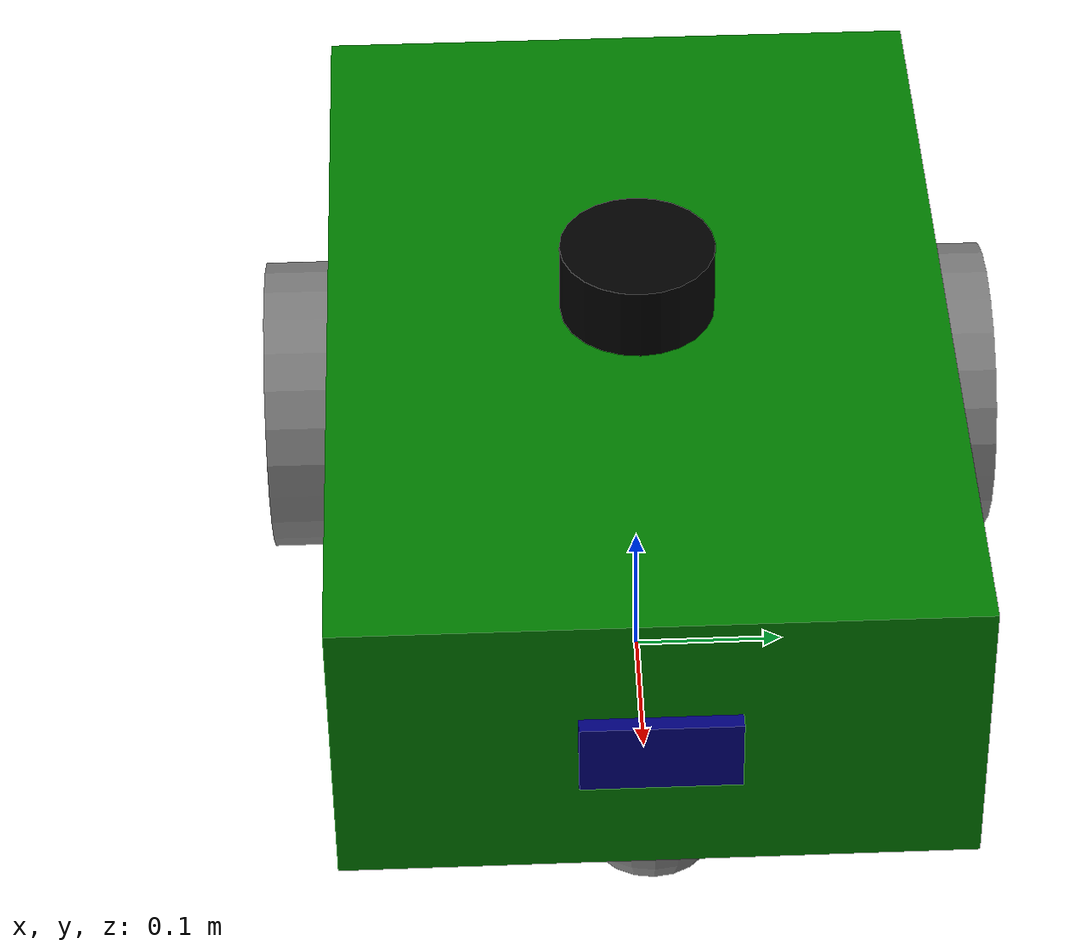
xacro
<?xml version="1.0" encoding="UTF-8"?>

<robot name="differential_robot" xmlns:xacro="http://www.ros.org/wiki/xacro">

    <xacro:arg name="sim_classic" default="false" />
    <xacro:arg name="ign" default="false" />

    <xacro:include filename="$(find differential_robot_description)/urdf/common_properties.xacro"/>
    <xacro:include filename="$(find differential_robot_description)/urdf/mobile_base.xacro"/>
    <xacro:include filename="$(find differential_robot_description)/urdf/mobile_base_gazebo.xacro"/>

    <xacro:include filename="$(find differential_robot_description)/urdf/camera.xacro"/>
    <xacro:include filename="$(find differential_robot_description)/urdf/lidar.xacro"/>
</robot>

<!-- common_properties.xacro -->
<robot xmlns:xacro="http://www.ros.org/wiki/xacro">
    <!-- Material properties to use in the robot -->
    <material name="green">
        <color rgba="0.0 0.5 0.0 1.0"/>
    </material>
    <material name="blue">
        <color rgba="0.0 0.0 0.5 1.0"/>
    </material>
    <material name="gray">
        <color rgba="0.5 0.5 0.5 1.0"/>
    </material>
    <material name="red_collision">
        <color rgba="0.5 0.0 0.0 0.5"/>
    </material>
    <material name="black">
        <color rgba="0.0 0.0 0.0 1.0"/>
    </material>

    <!-- Inertial macros -->
    <xacro:macro name="box_inertia" params="m l w h xyz rpy">
        <inertial>
            <origin xyz="${xyz}" rpy="${rpy}"/>
            <mass value="${m}"/>
            <inertia ixx="${(m/12.0) * (h*h + l*l)}" ixy="0.0" ixz="0.0" iyy="${(m/12.0) * (w*w + l*l)}" iyz="0.0" izz="${(m/12.0) * (h*h + w*w)}"/>
        </inertial>
    </xacro:macro>

    <xacro:macro name="cylinder_inertia" params="m r l xyz rpy">
        <inertial>
            <origin xyz="${xyz}" rpy="${rpy}"/>
            <mass value="${m}"/>
            <inertia ixx="${(m/12.0) * (l*l + 3.0*r*r)}" ixy="0.0" ixz="0.0" iyy="${(m/12.0) * (l*l + 3.0*r*r)}" iyz="0.0" izz="${(m/2.0) * (r*r)}"/>
        </inertial>
    </xacro:macro>

    <xacro:macro name="sphere_inertia" params="m r xyz rpy">
        <inertial>
            <origin xyz="${xyz}" rpy="${rpy}"/>
            <mass value="${m}"/>
            <inertia ixx="${(2.0*m/5.0) * (r*r)}" ixy="0.0" ixz="0.0" iyy="${(2.0*m/5.0) * (r*r)}" iyz="0.0" izz="${(2.0*m/5.0) * (r*r)}"/>
        </inertial>
    </xacro:macro>
</robot>

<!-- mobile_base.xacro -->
<robot xmlns:xacro="http://www.ros.org/wiki/xacro">
    <xacro:property name="base_lenght" value="0.6"/>
    <xacro:property name="base_width" value="0.4"/>
    <xacro:property name="base_height" value="0.2"/>
    <xacro:property name="wheel_radius" value="0.1"/>
    <xacro:property name="wheel_lenght" value="0.05"/>

    <xacro:macro name="wheel_link" params="prefix">
        <link name="${prefix}_wheel_link">
            <xacro:cylinder_inertia m="1.0" r="${2*wheel_radius}" l="${2*wheel_lenght}" xyz="0.0 0.0 0.0" rpy="${pi/2.0} 0.0 0.0"/>

            <visual>
                <geometry>
                    <cylinder radius="${wheel_radius}" length="${wheel_lenght}"/>
                </geometry>
                <origin xyz="0.0 0.0 0.0" rpy="${pi/2.0} 0.0 0.0"/>
                <material name="gray"/>
            </visual>

            <collision>
                <geometry>
                    <cylinder radius="${wheel_radius}" length="${wheel_lenght}"/>
                </geometry>
                <origin xyz="0.0 0.0 0.0" rpy="${pi/2.0} 0.0 0.0"/>
            </collision>
        </link>
    </xacro:macro>

    <!-- Robot links section -->
    <link name="base_footprint"/>

    <link name="base_link">
        <xacro:box_inertia m="5.0" l="${2*base_lenght}" w="${2*base_width}" h="${2*base_height}"
                           xyz="0.0 0.0 ${base_height/2.0}" rpy="0.0 0.0 0.0"/>

        <visual>
            <geometry>
                <box size="${base_lenght} ${base_width} ${base_height}"/>
            </geometry>
            <origin xyz="0.0 0.0 ${base_height/2.0}" rpy="0.0 0.0 0.0"/>
            <material name="green"/>
        </visual>

        <collision>
            <geometry>
                <box size="${base_lenght} ${base_width} ${base_height}"/>
            </geometry>
            <origin xyz="0.0 0.0 ${base_height/2.0}" rpy="0.0 0.0 0.0"/>
        </collision>
    </link>

    <xacro:wheel_link prefix="right"/>
    <xacro:wheel_link prefix="left"/>

    <link name="caster_wheel_link">
        <xacro:sphere_inertia m="0.5" r="${2*wheel_radius/2.0}"
                           xyz="0.0 0.0 0.0" rpy="0.0 0.0 0.0"/>

        <visual>
            <geometry>
                <sphere radius="${wheel_radius/2.0}"/>
            </geometry>
            <origin xyz="0.0 0.0 0.0" rpy="0.0 0.0 0.0"/>
            <material name="gray"/>
        </visual>

        <collision>
            <geometry>
                <sphere radius="${wheel_radius/2.0}"/>
            </geometry>
            <origin xyz="0.0 0.0 0.0" rpy="0.0 0.0 0.0"/>
        </collision>
    </link>

    <!-- Robot joints section -->
    <joint name="base_joint" type="fixed">
        <parent link="base_footprint"/>
        <child link="base_link"/>
        <origin xyz="0.0 0.0 0.1" rpy="0.0 0.0 0.0"/>
    </joint>
    <joint name="base_right_wheel_joint" type="continuous">
        <parent link="base_link"/>
        <child link="right_wheel_link"/>
        <axis xyz="0 1 0"/>
        <origin xyz="${-base_lenght/4.0} ${-((base_width/2.0)+(wheel_lenght/2.0))}  0.0" rpy="0 0 0"/>
    </joint>
    <joint name="base_left_wheel_joint" type="continuous">
        <parent link="base_link"/>
        <child link="left_wheel_link"/>
        <axis xyz="0 1 0"/>
        <origin xyz="${-base_lenght/4.0} ${(base_width/2.0)+(wheel_lenght/2.0)} 0.0" rpy="0 0 0"/>
    </joint>
    <joint name="base_caster_wheel_joint" type="fixed">
        <parent link="base_link"/>
        <child link="caster_wheel_link"/>
        <origin xyz="${base_lenght/3.0} 0.0 ${-wheel_radius/2.0}" rpy="0.0 0.0 0.0"/>
    </joint>

</robot>

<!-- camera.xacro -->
<robot xmlns:xacro="http://www.ros.org/wiki/xacro">

    <xacro:property name="camera_lenght" value="0.01"/>
    <xacro:property name="camera_width" value="0.1"/>
    <xacro:property name="camera_height" value="0.05"/>

    <link name="camera_link">
        <visual>
            <geometry>
                <box size="${camera_lenght} ${camera_width} ${camera_height}"/>
            </geometry>
            <origin xyz="0.0 0.0 0.0" rpy="0.0 0.0 0.0"/>
            <material name="blue"/>
        </visual>
        <collision>
            <geometry>
                <box size="${camera_lenght} ${camera_width} ${camera_height}"/>
            </geometry>
            <origin xyz="0.0 0.0 0.0" rpy="0.0 0.0 0.0"/>
        </collision>
        <xacro:box_inertia m="0.1" l="${camera_lenght}" w="${camera_width}" h="${camera_height}" xyz="0.0 0.0 0.0" rpy="0.0 0.0 0.0"/>
    </link>

    <!-- generate an optical frame
      http://www.ros.org/reps/rep-0103.html#suffix-frames
      so that ros and opencv can operate on the camera frame correctly
      -->
    <link name="camera_optical_link"/>

    <joint name="camera_optical_joint" type="fixed">
        <!-- these values have to be these values otherwise the gazebo camera
            image won't be aligned properly with the frame it is supposedly
            originating from -->
        <origin xyz="0 0 0" rpy="${-pi/2} 0 ${-pi/2}"/>
        <parent link="camera_link"/>
        <child link="camera_optical_link"/>
    </joint>

    <joint name="base_camera_joint" type="fixed">
        <parent link="base_link"/>
        <child link="camera_link"/>
        <origin xyz="${(base_lenght + camera_lenght) / 2.0} 0.0 ${base_height / 2.0}" rpy="0.0 0.0 0.0"/>
    </joint>

    <gazebo reference="camera_link">
        <material>Gazebo/Blue</material>
        <xacro:if value="$(arg sim_classic)">
            <sensor name="camera_sensor" type="camera" update_rate="10.0">
                <visualize>true</visualize>
                <origin xyz="0.0 0.0 0.0" rpy="0.0 0.0 0.0"/>
            <!-- Sensor |camera,ray,imu,magnetometer,gps,force_torque,contact,sonar,rfidtag,rfid| -->
                <plugin name="camera_controller" filename="libgazebo_ros_camera.so">

                    <!-- Set camera name. If empty, defaults to sensor name -->

                    <!-- Set TF frame name. If empty, defaults to link name -->
                    <frame_name>camera_optical_link</frame_name>

                    <!-- Set to true to turn on triggering -->

                    <!-- Set some projection matrix fields-->
                    <!-- Projection matrix principal point cx-->
                    <!-- Projection matrix principal point cy-->
                    <!-- Projection matrix focal length fy-->
                    <!-- Projection matrix translation Tx, Ty between stereo cameras-->
                    <!-- Full 3x3 rectification matrix. Values are in row-major order -->

                </plugin>
            </sensor>
        </xacro:if>
        <xacro:unless value="$(arg sim_classic)">
            <sensor name="camera" type="camera">
            <camera>
                <horizontal_fov>1.3962634</horizontal_fov>
                <image>
                    <width>640</width>
                    <height>480</height>
                    <format>R8G8B8</format>
                </image>
                <clip>
                    <near>0.1</near>
                    <far>15</far>
                </clip>
                <noise>
                    <type>gaussian</type>
                    <mean>0.0</mean>
                    <stddev>0.001</stddev>
                </noise>
                <optical_frame_id>camera_optical_link</optical_frame_id>
                <camera_info_topic>camera/camera_info</camera_info_topic>
            </camera>
            <always_on>1</always_on>
            <update_rate>30</update_rate>
            <visualize>true</visualize>
            <topic>camera/image_raw</topic>
            </sensor>
        </xacro:unless>
    </gazebo>

</robot>

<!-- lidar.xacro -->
<robot xmlns:xacro="http://www.ros.org/wiki/xacro">

    <xacro:property name="lidar_radius" value="0.05"/>
    <xacro:property name="lidar_lenght" value="0.05"/>
    <!-- Hokuyo Laser -->
    <link name="lidar_link">
        <visual>
            <geometry>
                <cylinder radius="${lidar_radius}" length="${lidar_lenght}"/>
            </geometry>
            <origin xyz="0 0 0" rpy="0 0 0"/>
            <material name="black"/>
        </visual>
        <collision>
            <geometry>
                <cylinder radius="${lidar_radius}" length="${lidar_lenght}"/>
            </geometry>
            <origin xyz="0 0 0" rpy="0 0 0"/>
        </collision>
        <xacro:cylinder_inertia m="1e-5" r="${lidar_radius}" l="${lidar_lenght}" xyz="0.0 0.0 0.0" rpy="0.0 0.0 0.0"/>
    </link>

    <joint name="base_lidar_joint" type="fixed">
        <parent link="base_link"/>
        <child link="lidar_link"/>
        <axis xyz="0 0 1" />
        <origin xyz="0 0 ${base_height + lidar_lenght / 2.0}" rpy="0 0 0"/>
    </joint>

    <gazebo reference="lidar_link">
        <material>Gazebo/Black</material>
        <xacro:if value="$(arg sim_classic)">
            <sensor type="ray" name="lidar_sensor">
                <always_on>true</always_on>
                <pose>0 0 0 0 0 0</pose>
                <visualize>true</visualize>
                <update_rate>40</update_rate>
                <ray>
                    <scan>
                        <horizontal>
                            <samples>720</samples>
                            <resolution>1</resolution>
                            <min_angle>-2.094395</min_angle>
                            <max_angle>2.094395</max_angle>
                        </horizontal>
                    </scan>
                    <range>
                        <min>0.10</min>
                        <max>30.0</max>
                        <resolution>0.01</resolution>
                    </range>
                    <noise>
                        <type>gaussian</type>
                        <mean>0.0</mean>
                        <stddev>0.01</stddev>
                    </noise>
                </ray>
                <plugin name="gazebo_ros_lidar_controller" filename="libgazebo_ros_ray_sensor.so">
                    <ros>
                        <remapping>~/out:=scan</remapping>
                    </ros>
                    <output_type>sensor_msgs/LaserScan</output_type>
                    <frameName>lidar_link</frameName>
                </plugin>
            </sensor>
        </xacro:if>

        <xacro:unless value="$(arg sim_classic)">
            <sensor type="gpu_lidar" name="lidar_sensor">
                <always_on>true</always_on>
                <pose>0 0 0 0 0 0</pose>
                <visualize>true</visualize>
                <update_rate>40</update_rate>
                <topic>lidar</topic>
                <ray>
                    <scan>
                        <horizontal>
                            <samples>720</samples>
                            <resolution>1</resolution>
                            <min_angle>-2.094395</min_angle>
                            <max_angle>2.094395</max_angle>
                        </horizontal>
                    </scan>
                    <range>
                        <min>0.10</min>
                        <max>30.0</max>
                        <resolution>0.01</resolution>
                    </range>
                    <noise>
                        <type>gaussian</type>
                        <mean>0.0</mean>
                        <stddev>0.01</stddev>
                    </noise>
                </ray>
                <xacro:if value="$(arg ign)">
                    <!-- Gazebo plugin to publish the laser scan data -->
                    <plugin filename="libignition-gazebo-sensors-system.so" name="ignition::gazebo::systems::Sensors">
                        <render_engine>ogre2</render_engine>
                    </plugin>
                </xacro:if>
                <xacro:unless value="$(arg ign)">
                    <!-- Gazebo plugin to publish the laser scan data -->
                    <plugin filename="gz-sim-sensors-system.so" name="gz::sim::systems::Sensors">
                        <render_engine>ogre2</render_engine>
                    </plugin>
                </xacro:unless>
            </sensor>
        </xacro:unless>
    </gazebo>
</robot>
